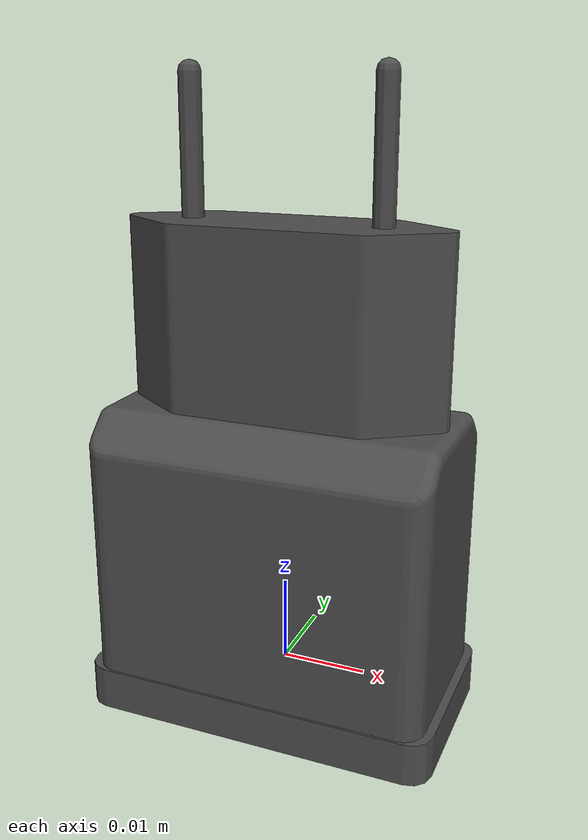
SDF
<?xml version="1.0" ?>
<sdf version='1.6'>
  <model name='Charger'>
  <static>0</static>
    <link name='Charger'>
      <pose frame=''>0 0 0 0 -0 0</pose>
      <inertial>
        <pose frame=''>0.000859 -0 0.038027 0 -0 0</pose>
        <mass>0.31482</mass>
        <inertia>
          <ixx>0.00035006</ixx>
          <ixy>6.6114e-10</ixy>
          <ixz>4.3343e-06</ixz>
          <iyy>0.00045804</iyy>
          <iyz>-8.0855e-12</iyz>
          <izz>0.00019822</izz>
        </inertia>
      </inertial>
      <collision name='Charger_collision'>
      	  <surface>
	    <friction>
	      <ode>
		<mu>0.5</mu>
		<mu2>0.5</mu2>
	      </ode>
	    </friction>
	    <contact>
	      <ode>
		<kp>1000000.0</kp>
		<kd>1.0</kd>
		<max_vel>1.0</max_vel>
		<min_depth>0.0025</min_depth>
	      </ode>
	    </contact>
	  </surface>
        <pose frame=''>0 0 0 1.5708 -0 0</pose>
        <geometry>
           <box>
              <size>0.04 0.04 0.04</size>
            </box>
        </geometry>
      </collision>
      <visual name='Charger_visual'>
      	<material>
          <script>
            <uri>file://media/materials/scripts/gazebo.material</uri>
            <name>Gazebo/DarkGrey</name>
          </script>
        </material>
        <pose frame=''>0 0 0 1.5708 -0 0</pose>
        <geometry>
          <mesh>
            <scale>0.5 0.5 0.5</scale>
            <uri>model://Charger/meshes/Charger.STL</uri>
          </mesh>
        </geometry>
      </visual>
            <velocity_decay>
      <linear>0.000000</linear>
      <angular>0.000000</angular>
      </velocity_decay>
      <self_collide>0</self_collide>
        <kinematic>0</kinematic>
        <gravity>1</gravity>
    </link>
  </model>
</sdf>
